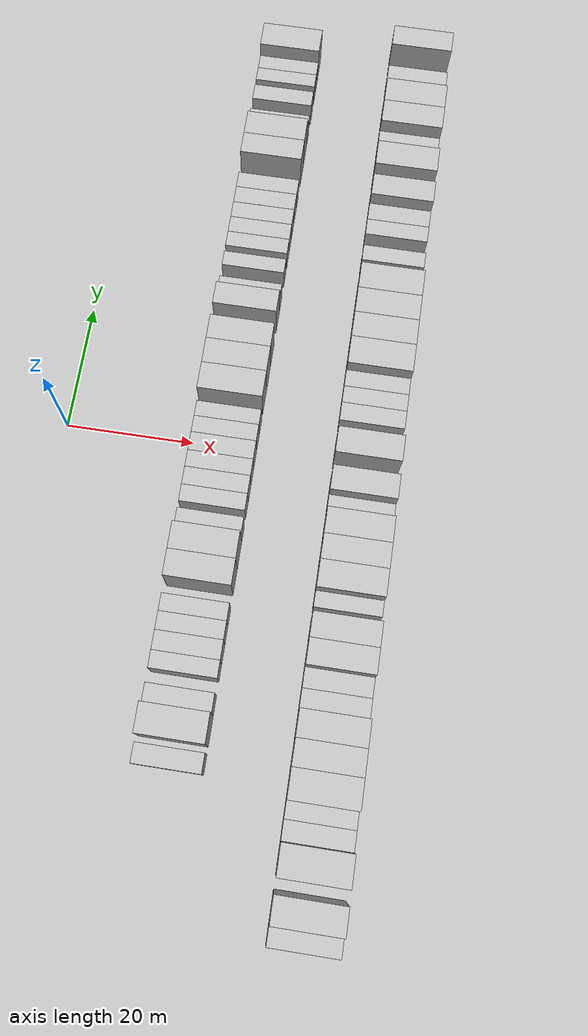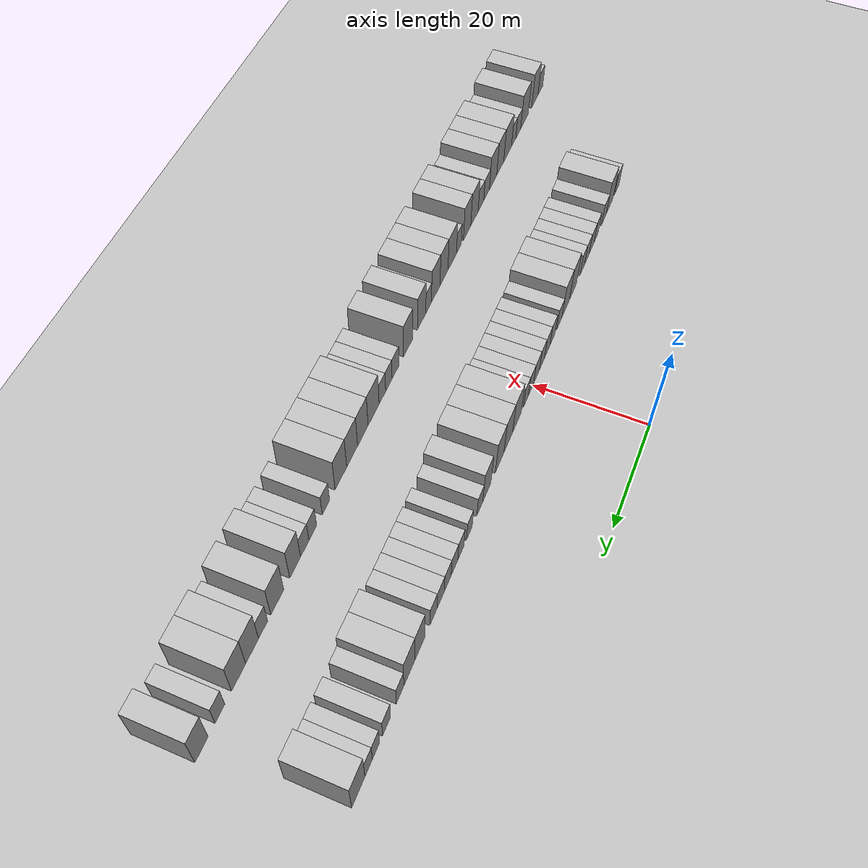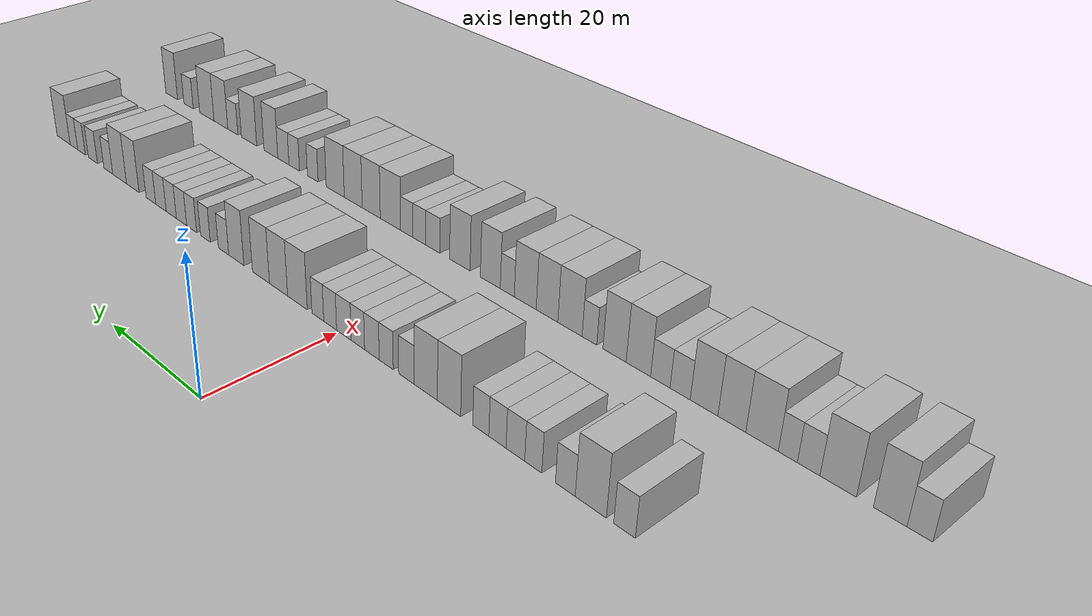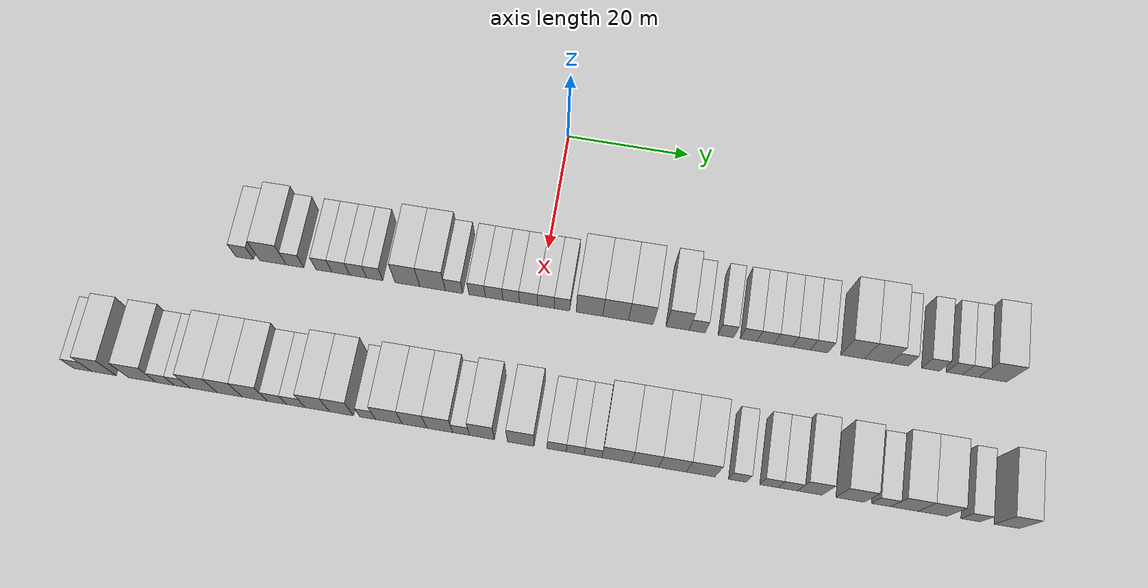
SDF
<sdf version="1.6">
 <world name="default">
  <include><name>ground_plane_1</name><uri>model://HANNAS_ground_plane</uri></include>
  <include>
   <name>ground_plane_2</name>
   <uri>model://HANNAS_ground_plane</uri>
   <pose>100 0 0  0 0 0</pose>
  </include>
  <model name="building_35">
   <static>1</static>
   <pose>25.0000 -47.2095 0 0.000000 0.000000 0.000000</pose>
   <link name="link">
    <pose>0 0 3.00 0 0 0</pose>
    <collision name="collision"><geometry><box><size>10.0000 2.8864 6.0000</size></box></geometry></collision>
    <visual name="visual">
     <cast_shadows>0</cast_shadows>
     <geometry><box><size>10.0000 2.8864 6.0000</size></box></geometry>
     <material>
      <script>
       <uri>model://HANNAS_wall/materials/scripts</uri>
       <uri>model://HANNAS_wall/materials/textures</uri>
       <name>vrc/HANNAS_wall</name>
      </script>
     </material>
    </visual>
   </link>
  </model>
  <model name="building_36">
   <static>1</static>
   <pose>25.0000 -42.6026 0 0.000000 0.000000 0.000000</pose>
   <link name="link">
    <pose>0 0 4.50 0 0 0</pose>
    <collision name="collision"><geometry><box><size>10.0000 4.3273 9.0000</size></box></geometry></collision>
    <visual name="visual">
     <cast_shadows>0</cast_shadows>
     <geometry><box><size>10.0000 4.3273 9.0000</size></box></geometry>
     <material>
      <script>
       <uri>model://HANNAS_wall/materials/scripts</uri>
       <uri>model://HANNAS_wall/materials/textures</uri>
       <name>vrc/HANNAS_wall</name>
      </script>
     </material>
    </visual>
   </link>
  </model>
  <model name="building_37">
   <static>1</static>
   <pose>25.0000 -39.0143 0 0.000000 0.000000 0.000000</pose>
   <link name="link">
    <pose>0 0 3.00 0 0 0</pose>
    <collision name="collision"><geometry><box><size>10.0000 2.8494 6.0000</size></box></geometry></collision>
    <visual name="visual">
     <cast_shadows>0</cast_shadows>
     <geometry><box><size>10.0000 2.8494 6.0000</size></box></geometry>
     <material>
      <script>
       <uri>model://HANNAS_wall/materials/scripts</uri>
       <uri>model://HANNAS_wall/materials/textures</uri>
       <name>vrc/HANNAS_wall</name>
      </script>
     </material>
    </visual>
   </link>
  </model>
  <model name="building_38">
   <static>1</static>
   <pose>25.0000 -34.3015 0 0.000000 0.000000 0.000000</pose>
   <link name="link">
    <pose>0 0 3.00 0 0 0</pose>
    <collision name="collision"><geometry><box><size>10.0000 2.5761 6.0000</size></box></geometry></collision>
    <visual name="visual">
     <cast_shadows>0</cast_shadows>
     <geometry><box><size>10.0000 2.5761 6.0000</size></box></geometry>
     <material>
      <script>
       <uri>model://HANNAS_wall/materials/scripts</uri>
       <uri>model://HANNAS_wall/materials/textures</uri>
       <name>vrc/HANNAS_wall</name>
      </script>
     </material>
    </visual>
   </link>
  </model>
  <model name="building_39">
   <static>1</static>
   <pose>25.0000 -31.5714 0 0.000000 0.000000 0.000000</pose>
   <link name="link">
    <pose>0 0 3.00 0 0 0</pose>
    <collision name="collision"><geometry><box><size>10.0000 2.8842 6.0000</size></box></geometry></collision>
    <visual name="visual">
     <cast_shadows>0</cast_shadows>
     <geometry><box><size>10.0000 2.8842 6.0000</size></box></geometry>
     <material>
      <script>
       <uri>model://HANNAS_wall/materials/scripts</uri>
       <uri>model://HANNAS_wall/materials/textures</uri>
       <name>vrc/HANNAS_wall</name>
      </script>
     </material>
    </visual>
   </link>
  </model>
  <model name="building_40">
   <static>1</static>
   <pose>25.0000 -28.7676 0 0.000000 0.000000 0.000000</pose>
   <link name="link">
    <pose>0 0 3.00 0 0 0</pose>
    <collision name="collision"><geometry><box><size>10.0000 2.7235 6.0000</size></box></geometry></collision>
    <visual name="visual">
     <cast_shadows>0</cast_shadows>
     <geometry><box><size>10.0000 2.7235 6.0000</size></box></geometry>
     <material>
      <script>
       <uri>model://HANNAS_wall/materials/scripts</uri>
       <uri>model://HANNAS_wall/materials/textures</uri>
       <name>vrc/HANNAS_wall</name>
      </script>
     </material>
    </visual>
   </link>
  </model>
  <model name="building_41">
   <static>1</static>
   <pose>25.0000 -26.1054 0 0.000000 0.000000 0.000000</pose>
   <link name="link">
    <pose>0 0 3.00 0 0 0</pose>
    <collision name="collision"><geometry><box><size>10.0000 2.6008 6.0000</size></box></geometry></collision>
    <visual name="visual">
     <cast_shadows>0</cast_shadows>
     <geometry><box><size>10.0000 2.6008 6.0000</size></box></geometry>
     <material>
      <script>
       <uri>model://HANNAS_wall/materials/scripts</uri>
       <uri>model://HANNAS_wall/materials/textures</uri>
       <name>vrc/HANNAS_wall</name>
      </script>
     </material>
    </visual>
   </link>
  </model>
  <model name="building_42">
   <static>1</static>
   <pose>25.0000 -20.8235 0 0.000000 0.000000 0.000000</pose>
   <link name="link">
    <pose>0 0 4.50 0 0 0</pose>
    <collision name="collision"><geometry><box><size>10.0000 3.9630 9.0000</size></box></geometry></collision>
    <visual name="visual">
     <cast_shadows>0</cast_shadows>
     <geometry><box><size>10.0000 3.9630 9.0000</size></box></geometry>
     <material>
      <script>
       <uri>model://HANNAS_wall/materials/scripts</uri>
       <uri>model://HANNAS_wall/materials/textures</uri>
       <name>vrc/HANNAS_wall</name>
      </script>
     </material>
    </visual>
   </link>
  </model>
  <model name="building_43">
   <static>1</static>
   <pose>25.0000 -16.7851 0 0.000000 0.000000 0.000000</pose>
   <link name="link">
    <pose>0 0 4.50 0 0 0</pose>
    <collision name="collision"><geometry><box><size>10.0000 4.1138 9.0000</size></box></geometry></collision>
    <visual name="visual">
     <cast_shadows>0</cast_shadows>
     <geometry><box><size>10.0000 4.1138 9.0000</size></box></geometry>
     <material>
      <script>
       <uri>model://HANNAS_wall/materials/scripts</uri>
       <uri>model://HANNAS_wall/materials/textures</uri>
       <name>vrc/HANNAS_wall</name>
      </script>
     </material>
    </visual>
   </link>
  </model>
  <model name="building_44">
   <static>1</static>
   <pose>25.0000 -13.3389 0 0.000000 0.000000 0.000000</pose>
   <link name="link">
    <pose>0 0 3.00 0 0 0</pose>
    <collision name="collision"><geometry><box><size>10.0000 2.7785 6.0000</size></box></geometry></collision>
    <visual name="visual">
     <cast_shadows>0</cast_shadows>
     <geometry><box><size>10.0000 2.7785 6.0000</size></box></geometry>
     <material>
      <script>
       <uri>model://HANNAS_wall/materials/scripts</uri>
       <uri>model://HANNAS_wall/materials/textures</uri>
       <name>vrc/HANNAS_wall</name>
      </script>
     </material>
    </visual>
   </link>
  </model>
  <model name="building_45">
   <static>1</static>
   <pose>25.0000 -9.6375 0 0.000000 0.000000 0.000000</pose>
   <link name="link">
    <pose>0 0 3.00 0 0 0</pose>
    <collision name="collision"><geometry><box><size>10.0000 2.6243 6.0000</size></box></geometry></collision>
    <visual name="visual">
     <cast_shadows>0</cast_shadows>
     <geometry><box><size>10.0000 2.6243 6.0000</size></box></geometry>
     <material>
      <script>
       <uri>model://HANNAS_wall/materials/scripts</uri>
       <uri>model://HANNAS_wall/materials/textures</uri>
       <name>vrc/HANNAS_wall</name>
      </script>
     </material>
    </visual>
   </link>
  </model>
  <model name="building_46">
   <static>1</static>
   <pose>25.0000 -6.9261 0 0.000000 0.000000 0.000000</pose>
   <link name="link">
    <pose>0 0 3.00 0 0 0</pose>
    <collision name="collision"><geometry><box><size>10.0000 2.7985 6.0000</size></box></geometry></collision>
    <visual name="visual">
     <cast_shadows>0</cast_shadows>
     <geometry><box><size>10.0000 2.7985 6.0000</size></box></geometry>
     <material>
      <script>
       <uri>model://HANNAS_wall/materials/scripts</uri>
       <uri>model://HANNAS_wall/materials/textures</uri>
       <name>vrc/HANNAS_wall</name>
      </script>
     </material>
    </visual>
   </link>
  </model>
  <model name="building_47">
   <static>1</static>
   <pose>25.0000 -4.2177 0 0.000000 0.000000 0.000000</pose>
   <link name="link">
    <pose>0 0 3.00 0 0 0</pose>
    <collision name="collision"><geometry><box><size>10.0000 2.6183 6.0000</size></box></geometry></collision>
    <visual name="visual">
     <cast_shadows>0</cast_shadows>
     <geometry><box><size>10.0000 2.6183 6.0000</size></box></geometry>
     <material>
      <script>
       <uri>model://HANNAS_wall/materials/scripts</uri>
       <uri>model://HANNAS_wall/materials/textures</uri>
       <name>vrc/HANNAS_wall</name>
      </script>
     </material>
    </visual>
   </link>
  </model>
  <model name="building_48">
   <static>1</static>
   <pose>25.0000 -1.4570 0 0.000000 0.000000 0.000000</pose>
   <link name="link">
    <pose>0 0 3.00 0 0 0</pose>
    <collision name="collision"><geometry><box><size>10.0000 2.9032 6.0000</size></box></geometry></collision>
    <visual name="visual">
     <cast_shadows>0</cast_shadows>
     <geometry><box><size>10.0000 2.9032 6.0000</size></box></geometry>
     <material>
      <script>
       <uri>model://HANNAS_wall/materials/scripts</uri>
       <uri>model://HANNAS_wall/materials/textures</uri>
       <name>vrc/HANNAS_wall</name>
      </script>
     </material>
    </visual>
   </link>
  </model>
  <model name="building_49">
   <static>1</static>
   <pose>25.0000 1.3108 0 0.000000 0.000000 0.000000</pose>
   <link name="link">
    <pose>0 0 3.00 0 0 0</pose>
    <collision name="collision"><geometry><box><size>10.0000 2.6324 6.0000</size></box></geometry></collision>
    <visual name="visual">
     <cast_shadows>0</cast_shadows>
     <geometry><box><size>10.0000 2.6324 6.0000</size></box></geometry>
     <material>
      <script>
       <uri>model://HANNAS_wall/materials/scripts</uri>
       <uri>model://HANNAS_wall/materials/textures</uri>
       <name>vrc/HANNAS_wall</name>
      </script>
     </material>
    </visual>
   </link>
  </model>
  <model name="building_50">
   <static>1</static>
   <pose>25.0000 3.8533 0 0.000000 0.000000 0.000000</pose>
   <link name="link">
    <pose>0 0 3.00 0 0 0</pose>
    <collision name="collision"><geometry><box><size>10.0000 2.4526 6.0000</size></box></geometry></collision>
    <visual name="visual">
     <cast_shadows>0</cast_shadows>
     <geometry><box><size>10.0000 2.4526 6.0000</size></box></geometry>
     <material>
      <script>
       <uri>model://HANNAS_wall/materials/scripts</uri>
       <uri>model://HANNAS_wall/materials/textures</uri>
       <name>vrc/HANNAS_wall</name>
      </script>
     </material>
    </visual>
   </link>
  </model>
  <model name="building_51">
   <static>1</static>
   <pose>25.0000 8.1928 0 0.000000 0.000000 0.000000</pose>
   <link name="link">
    <pose>0 0 4.50 0 0 0</pose>
    <collision name="collision"><geometry><box><size>10.0000 4.2265 9.0000</size></box></geometry></collision>
    <visual name="visual">
     <cast_shadows>0</cast_shadows>
     <geometry><box><size>10.0000 4.2265 9.0000</size></box></geometry>
     <material>
      <script>
       <uri>model://HANNAS_wall/materials/scripts</uri>
       <uri>model://HANNAS_wall/materials/textures</uri>
       <name>vrc/HANNAS_wall</name>
      </script>
     </material>
    </visual>
   </link>
  </model>
  <model name="building_52">
   <static>1</static>
   <pose>25.0000 12.3252 0 0.000000 0.000000 0.000000</pose>
   <link name="link">
    <pose>0 0 4.50 0 0 0</pose>
    <collision name="collision"><geometry><box><size>10.0000 4.0383 9.0000</size></box></geometry></collision>
    <visual name="visual">
     <cast_shadows>0</cast_shadows>
     <geometry><box><size>10.0000 4.0383 9.0000</size></box></geometry>
     <material>
      <script>
       <uri>model://HANNAS_wall/materials/scripts</uri>
       <uri>model://HANNAS_wall/materials/textures</uri>
       <name>vrc/HANNAS_wall</name>
      </script>
     </material>
    </visual>
   </link>
  </model>
  <model name="building_53">
   <static>1</static>
   <pose>25.0000 16.2974 0 0.000000 0.000000 0.000000</pose>
   <link name="link">
    <pose>0 0 4.50 0 0 0</pose>
    <collision name="collision"><geometry><box><size>10.0000 3.9061 9.0000</size></box></geometry></collision>
    <visual name="visual">
     <cast_shadows>0</cast_shadows>
     <geometry><box><size>10.0000 3.9061 9.0000</size></box></geometry>
     <material>
      <script>
       <uri>model://HANNAS_wall/materials/scripts</uri>
       <uri>model://HANNAS_wall/materials/textures</uri>
       <name>vrc/HANNAS_wall</name>
      </script>
     </material>
    </visual>
   </link>
  </model>
  <model name="building_54">
   <static>1</static>
   <pose>25.0000 22.0665 0 0.000000 0.000000 0.000000</pose>
   <link name="link">
    <pose>0 0 4.50 0 0 0</pose>
    <collision name="collision"><geometry><box><size>10.0000 3.6322 9.0000</size></box></geometry></collision>
    <visual name="visual">
     <cast_shadows>0</cast_shadows>
     <geometry><box><size>10.0000 3.6322 9.0000</size></box></geometry>
     <material>
      <script>
       <uri>model://HANNAS_wall/materials/scripts</uri>
       <uri>model://HANNAS_wall/materials/textures</uri>
       <name>vrc/HANNAS_wall</name>
      </script>
     </material>
    </visual>
   </link>
  </model>
  <model name="building_55">
   <static>1</static>
   <pose>25.0000 25.1581 0 0.000000 0.000000 0.000000</pose>
   <link name="link">
    <pose>0 0 3.00 0 0 0</pose>
    <collision name="collision"><geometry><box><size>10.0000 2.5508 6.0000</size></box></geometry></collision>
    <visual name="visual">
     <cast_shadows>0</cast_shadows>
     <geometry><box><size>10.0000 2.5508 6.0000</size></box></geometry>
     <material>
      <script>
       <uri>model://HANNAS_wall/materials/scripts</uri>
       <uri>model://HANNAS_wall/materials/textures</uri>
       <name>vrc/HANNAS_wall</name>
      </script>
     </material>
    </visual>
   </link>
  </model>
  <model name="building_56">
   <static>1</static>
   <pose>25.0000 29.6646 0 0.000000 0.000000 0.000000</pose>
   <link name="link">
    <pose>0 0 3.00 0 0 0</pose>
    <collision name="collision"><geometry><box><size>10.0000 2.4623 6.0000</size></box></geometry></collision>
    <visual name="visual">
     <cast_shadows>0</cast_shadows>
     <geometry><box><size>10.0000 2.4623 6.0000</size></box></geometry>
     <material>
      <script>
       <uri>model://HANNAS_wall/materials/scripts</uri>
       <uri>model://HANNAS_wall/materials/textures</uri>
       <name>vrc/HANNAS_wall</name>
      </script>
     </material>
    </visual>
   </link>
  </model>
  <model name="building_57">
   <static>1</static>
   <pose>25.0000 33.1906 0 0.000000 0.000000 0.000000</pose>
   <link name="link">
    <pose>0 0 3.00 0 0 0</pose>
    <collision name="collision"><geometry><box><size>10.0000 2.5897 6.0000</size></box></geometry></collision>
    <visual name="visual">
     <cast_shadows>0</cast_shadows>
     <geometry><box><size>10.0000 2.5897 6.0000</size></box></geometry>
     <material>
      <script>
       <uri>model://HANNAS_wall/materials/scripts</uri>
       <uri>model://HANNAS_wall/materials/textures</uri>
       <name>vrc/HANNAS_wall</name>
      </script>
     </material>
    </visual>
   </link>
  </model>
  <model name="building_58">
   <static>1</static>
   <pose>25.0000 35.8413 0 0.000000 0.000000 0.000000</pose>
   <link name="link">
    <pose>0 0 3.00 0 0 0</pose>
    <collision name="collision"><geometry><box><size>10.0000 2.7117 6.0000</size></box></geometry></collision>
    <visual name="visual">
     <cast_shadows>0</cast_shadows>
     <geometry><box><size>10.0000 2.7117 6.0000</size></box></geometry>
     <material>
      <script>
       <uri>model://HANNAS_wall/materials/scripts</uri>
       <uri>model://HANNAS_wall/materials/textures</uri>
       <name>vrc/HANNAS_wall</name>
      </script>
     </material>
    </visual>
   </link>
  </model>
  <model name="building_59">
   <static>1</static>
   <pose>25.0000 38.5759 0 0.000000 0.000000 0.000000</pose>
   <link name="link">
    <pose>0 0 3.00 0 0 0</pose>
    <collision name="collision"><geometry><box><size>10.0000 2.7576 6.0000</size></box></geometry></collision>
    <visual name="visual">
     <cast_shadows>0</cast_shadows>
     <geometry><box><size>10.0000 2.7576 6.0000</size></box></geometry>
     <material>
      <script>
       <uri>model://HANNAS_wall/materials/scripts</uri>
       <uri>model://HANNAS_wall/materials/textures</uri>
       <name>vrc/HANNAS_wall</name>
      </script>
     </material>
    </visual>
   </link>
  </model>
  <model name="building_60">
   <static>1</static>
   <pose>25.0000 41.3801 0 0.000000 0.000000 0.000000</pose>
   <link name="link">
    <pose>0 0 3.00 0 0 0</pose>
    <collision name="collision"><geometry><box><size>10.0000 2.8506 6.0000</size></box></geometry></collision>
    <visual name="visual">
     <cast_shadows>0</cast_shadows>
     <geometry><box><size>10.0000 2.8506 6.0000</size></box></geometry>
     <material>
      <script>
       <uri>model://HANNAS_wall/materials/scripts</uri>
       <uri>model://HANNAS_wall/materials/textures</uri>
       <name>vrc/HANNAS_wall</name>
      </script>
     </material>
    </visual>
   </link>
  </model>
  <model name="building_61">
   <static>1</static>
   <pose>25.0000 44.1624 0 0.000000 0.000000 0.000000</pose>
   <link name="link">
    <pose>0 0 3.00 0 0 0</pose>
    <collision name="collision"><geometry><box><size>10.0000 2.7140 6.0000</size></box></geometry></collision>
    <visual name="visual">
     <cast_shadows>0</cast_shadows>
     <geometry><box><size>10.0000 2.7140 6.0000</size></box></geometry>
     <material>
      <script>
       <uri>model://HANNAS_wall/materials/scripts</uri>
       <uri>model://HANNAS_wall/materials/textures</uri>
       <name>vrc/HANNAS_wall</name>
      </script>
     </material>
    </visual>
   </link>
  </model>
  <model name="building_62">
   <static>1</static>
   <pose>25.0000 49.3461 0 0.000000 0.000000 0.000000</pose>
   <link name="link">
    <pose>0 0 4.50 0 0 0</pose>
    <collision name="collision"><geometry><box><size>10.0000 3.6535 9.0000</size></box></geometry></collision>
    <visual name="visual">
     <cast_shadows>0</cast_shadows>
     <geometry><box><size>10.0000 3.6535 9.0000</size></box></geometry>
     <material>
      <script>
       <uri>model://HANNAS_wall/materials/scripts</uri>
       <uri>model://HANNAS_wall/materials/textures</uri>
       <name>vrc/HANNAS_wall</name>
      </script>
     </material>
    </visual>
   </link>
  </model>
  <model name="building_63">
   <static>1</static>
   <pose>25.0000 53.2187 0 0.000000 0.000000 0.000000</pose>
   <link name="link">
    <pose>0 0 4.50 0 0 0</pose>
    <collision name="collision"><geometry><box><size>10.0000 4.0916 9.0000</size></box></geometry></collision>
    <visual name="visual">
     <cast_shadows>0</cast_shadows>
     <geometry><box><size>10.0000 4.0916 9.0000</size></box></geometry>
     <material>
      <script>
       <uri>model://HANNAS_wall/materials/scripts</uri>
       <uri>model://HANNAS_wall/materials/textures</uri>
       <name>vrc/HANNAS_wall</name>
      </script>
     </material>
    </visual>
   </link>
  </model>
  <model name="building_64">
   <static>1</static>
   <pose>25.0000 56.6084 0 0.000000 0.000000 0.000000</pose>
   <link name="link">
    <pose>0 0 3.00 0 0 0</pose>
    <collision name="collision"><geometry><box><size>10.0000 2.6878 6.0000</size></box></geometry></collision>
    <visual name="visual">
     <cast_shadows>0</cast_shadows>
     <geometry><box><size>10.0000 2.6878 6.0000</size></box></geometry>
     <material>
      <script>
       <uri>model://HANNAS_wall/materials/scripts</uri>
       <uri>model://HANNAS_wall/materials/textures</uri>
       <name>vrc/HANNAS_wall</name>
      </script>
     </material>
    </visual>
   </link>
  </model>
  <model name="building_65">
   <static>1</static>
   <pose>25.0000 61.3530 0 0.000000 0.000000 0.000000</pose>
   <link name="link">
    <pose>0 0 3.00 0 0 0</pose>
    <collision name="collision"><geometry><box><size>10.0000 2.8014 6.0000</size></box></geometry></collision>
    <visual name="visual">
     <cast_shadows>0</cast_shadows>
     <geometry><box><size>10.0000 2.8014 6.0000</size></box></geometry>
     <material>
      <script>
       <uri>model://HANNAS_wall/materials/scripts</uri>
       <uri>model://HANNAS_wall/materials/textures</uri>
       <name>vrc/HANNAS_wall</name>
      </script>
     </material>
    </visual>
   </link>
  </model>
  <model name="building_66">
   <static>1</static>
   <pose>25.0000 64.9704 0 0.000000 0.000000 0.000000</pose>
   <link name="link">
    <pose>0 0 3.00 0 0 0</pose>
    <collision name="collision"><geometry><box><size>10.0000 2.4335 6.0000</size></box></geometry></collision>
    <visual name="visual">
     <cast_shadows>0</cast_shadows>
     <geometry><box><size>10.0000 2.4335 6.0000</size></box></geometry>
     <material>
      <script>
       <uri>model://HANNAS_wall/materials/scripts</uri>
       <uri>model://HANNAS_wall/materials/textures</uri>
       <name>vrc/HANNAS_wall</name>
      </script>
     </material>
    </visual>
   </link>
  </model>
  <model name="building_67">
   <static>1</static>
   <pose>25.0000 67.4277 0 0.000000 0.000000 0.000000</pose>
   <link name="link">
    <pose>0 0 3.00 0 0 0</pose>
    <collision name="collision"><geometry><box><size>10.0000 2.4811 6.0000</size></box></geometry></collision>
    <visual name="visual">
     <cast_shadows>0</cast_shadows>
     <geometry><box><size>10.0000 2.4811 6.0000</size></box></geometry>
     <material>
      <script>
       <uri>model://HANNAS_wall/materials/scripts</uri>
       <uri>model://HANNAS_wall/materials/textures</uri>
       <name>vrc/HANNAS_wall</name>
      </script>
     </material>
    </visual>
   </link>
  </model>
  <model name="building_68">
   <static>1</static>
   <pose>25.0000 70.8253 0 0.000000 0.000000 0.000000</pose>
   <link name="link">
    <pose>0 0 4.50 0 0 0</pose>
    <collision name="collision"><geometry><box><size>10.0000 4.3140 9.0000</size></box></geometry></collision>
    <visual name="visual">
     <cast_shadows>0</cast_shadows>
     <geometry><box><size>10.0000 4.3140 9.0000</size></box></geometry>
     <material>
      <script>
       <uri>model://HANNAS_wall/materials/scripts</uri>
       <uri>model://HANNAS_wall/materials/textures</uri>
       <name>vrc/HANNAS_wall</name>
      </script>
     </material>
    </visual>
   </link>
  </model>
  <model name="building_141">
   <static>1</static>
   <pose>47.0000 -67.1854 0 0.000000 0.000000 0.000000</pose>
   <link name="link">
    <pose>0 0 3.00 0 0 0</pose>
    <collision name="collision"><geometry><box><size>10.0000 2.8740 6.0000</size></box></geometry></collision>
    <visual name="visual">
     <cast_shadows>0</cast_shadows>
     <geometry><box><size>10.0000 2.8740 6.0000</size></box></geometry>
     <material>
      <script>
       <uri>model://HANNAS_wall/materials/scripts</uri>
       <uri>model://HANNAS_wall/materials/textures</uri>
       <name>vrc/HANNAS_wall</name>
      </script>
     </material>
    </visual>
   </link>
  </model>
  <model name="building_142">
   <static>1</static>
   <pose>47.0000 -63.8148 0 0.000000 0.000000 0.000000</pose>
   <link name="link">
    <pose>0 0 4.50 0 0 0</pose>
    <collision name="collision"><geometry><box><size>10.0000 3.8673 9.0000</size></box></geometry></collision>
    <visual name="visual">
     <cast_shadows>0</cast_shadows>
     <geometry><box><size>10.0000 3.8673 9.0000</size></box></geometry>
     <material>
      <script>
       <uri>model://HANNAS_wall/materials/scripts</uri>
       <uri>model://HANNAS_wall/materials/textures</uri>
       <name>vrc/HANNAS_wall</name>
      </script>
     </material>
    </visual>
   </link>
  </model>
  <model name="building_143">
   <static>1</static>
   <pose>47.0000 -57.6618 0 0.000000 0.000000 0.000000</pose>
   <link name="link">
    <pose>0 0 4.50 0 0 0</pose>
    <collision name="collision"><geometry><box><size>10.0000 4.4385 9.0000</size></box></geometry></collision>
    <visual name="visual">
     <cast_shadows>0</cast_shadows>
     <geometry><box><size>10.0000 4.4385 9.0000</size></box></geometry>
     <material>
      <script>
       <uri>model://HANNAS_wall/materials/scripts</uri>
       <uri>model://HANNAS_wall/materials/textures</uri>
       <name>vrc/HANNAS_wall</name>
      </script>
     </material>
    </visual>
   </link>
  </model>
  <model name="building_144">
   <static>1</static>
   <pose>47.0000 -54.0201 0 0.000000 0.000000 0.000000</pose>
   <link name="link">
    <pose>0 0 3.00 0 0 0</pose>
    <collision name="collision"><geometry><box><size>10.0000 2.8450 6.0000</size></box></geometry></collision>
    <visual name="visual">
     <cast_shadows>0</cast_shadows>
     <geometry><box><size>10.0000 2.8450 6.0000</size></box></geometry>
     <material>
      <script>
       <uri>model://HANNAS_wall/materials/scripts</uri>
       <uri>model://HANNAS_wall/materials/textures</uri>
       <name>vrc/HANNAS_wall</name>
      </script>
     </material>
    </visual>
   </link>
  </model>
  <model name="building_145">
   <static>1</static>
   <pose>47.0000 -51.3653 0 0.000000 0.000000 0.000000</pose>
   <link name="link">
    <pose>0 0 3.00 0 0 0</pose>
    <collision name="collision"><geometry><box><size>10.0000 2.4646 6.0000</size></box></geometry></collision>
    <visual name="visual">
     <cast_shadows>0</cast_shadows>
     <geometry><box><size>10.0000 2.4646 6.0000</size></box></geometry>
     <material>
      <script>
       <uri>model://HANNAS_wall/materials/scripts</uri>
       <uri>model://HANNAS_wall/materials/textures</uri>
       <name>vrc/HANNAS_wall</name>
      </script>
     </material>
    </visual>
   </link>
  </model>
  <model name="building_146">
   <static>1</static>
   <pose>47.0000 -47.9667 0 0.000000 0.000000 0.000000</pose>
   <link name="link">
    <pose>0 0 4.50 0 0 0</pose>
    <collision name="collision"><geometry><box><size>10.0000 4.3327 9.0000</size></box></geometry></collision>
    <visual name="visual">
     <cast_shadows>0</cast_shadows>
     <geometry><box><size>10.0000 4.3327 9.0000</size></box></geometry>
     <material>
      <script>
       <uri>model://HANNAS_wall/materials/scripts</uri>
       <uri>model://HANNAS_wall/materials/textures</uri>
       <name>vrc/HANNAS_wall</name>
      </script>
     </material>
    </visual>
   </link>
  </model>
  <model name="building_147">
   <static>1</static>
   <pose>47.0000 -43.8738 0 0.000000 0.000000 0.000000</pose>
   <link name="link">
    <pose>0 0 4.50 0 0 0</pose>
    <collision name="collision"><geometry><box><size>10.0000 3.8532 9.0000</size></box></geometry></collision>
    <visual name="visual">
     <cast_shadows>0</cast_shadows>
     <geometry><box><size>10.0000 3.8532 9.0000</size></box></geometry>
     <material>
      <script>
       <uri>model://HANNAS_wall/materials/scripts</uri>
       <uri>model://HANNAS_wall/materials/textures</uri>
       <name>vrc/HANNAS_wall</name>
      </script>
     </material>
    </visual>
   </link>
  </model>
  <model name="building_148">
   <static>1</static>
   <pose>47.0000 -39.9713 0 0.000000 0.000000 0.000000</pose>
   <link name="link">
    <pose>0 0 4.50 0 0 0</pose>
    <collision name="collision"><geometry><box><size>10.0000 3.9518 9.0000</size></box></geometry></collision>
    <visual name="visual">
     <cast_shadows>0</cast_shadows>
     <geometry><box><size>10.0000 3.9518 9.0000</size></box></geometry>
     <material>
      <script>
       <uri>model://HANNAS_wall/materials/scripts</uri>
       <uri>model://HANNAS_wall/materials/textures</uri>
       <name>vrc/HANNAS_wall</name>
      </script>
     </material>
    </visual>
   </link>
  </model>
  <model name="building_149">
   <static>1</static>
   <pose>47.0000 -36.5074 0 0.000000 0.000000 0.000000</pose>
   <link name="link">
    <pose>0 0 3.00 0 0 0</pose>
    <collision name="collision"><geometry><box><size>10.0000 2.9760 6.0000</size></box></geometry></collision>
    <visual name="visual">
     <cast_shadows>0</cast_shadows>
     <geometry><box><size>10.0000 2.9760 6.0000</size></box></geometry>
     <material>
      <script>
       <uri>model://HANNAS_wall/materials/scripts</uri>
       <uri>model://HANNAS_wall/materials/textures</uri>
       <name>vrc/HANNAS_wall</name>
      </script>
     </material>
    </visual>
   </link>
  </model>
  <model name="building_150">
   <static>1</static>
   <pose>47.0000 -33.5532 0 0.000000 0.000000 0.000000</pose>
   <link name="link">
    <pose>0 0 3.00 0 0 0</pose>
    <collision name="collision"><geometry><box><size>10.0000 2.9324 6.0000</size></box></geometry></collision>
    <visual name="visual">
     <cast_shadows>0</cast_shadows>
     <geometry><box><size>10.0000 2.9324 6.0000</size></box></geometry>
     <material>
      <script>
       <uri>model://HANNAS_wall/materials/scripts</uri>
       <uri>model://HANNAS_wall/materials/textures</uri>
       <name>vrc/HANNAS_wall</name>
      </script>
     </material>
    </visual>
   </link>
  </model>
  <model name="building_151">
   <static>1</static>
   <pose>47.0000 -30.1807 0 0.000000 0.000000 0.000000</pose>
   <link name="link">
    <pose>0 0 4.50 0 0 0</pose>
    <collision name="collision"><geometry><box><size>10.0000 3.8127 9.0000</size></box></geometry></collision>
    <visual name="visual">
     <cast_shadows>0</cast_shadows>
     <geometry><box><size>10.0000 3.8127 9.0000</size></box></geometry>
     <material>
      <script>
       <uri>model://HANNAS_wall/materials/scripts</uri>
       <uri>model://HANNAS_wall/materials/textures</uri>
       <name>vrc/HANNAS_wall</name>
      </script>
     </material>
    </visual>
   </link>
  </model>
  <model name="building_152">
   <static>1</static>
   <pose>47.0000 -26.4099 0 0.000000 0.000000 0.000000</pose>
   <link name="link">
    <pose>0 0 4.50 0 0 0</pose>
    <collision name="collision"><geometry><box><size>10.0000 3.7288 9.0000</size></box></geometry></collision>
    <visual name="visual">
     <cast_shadows>0</cast_shadows>
     <geometry><box><size>10.0000 3.7288 9.0000</size></box></geometry>
     <material>
      <script>
       <uri>model://HANNAS_wall/materials/scripts</uri>
       <uri>model://HANNAS_wall/materials/textures</uri>
       <name>vrc/HANNAS_wall</name>
      </script>
     </material>
    </visual>
   </link>
  </model>
  <model name="building_153">
   <static>1</static>
   <pose>47.0000 -22.3298 0 0.000000 0.000000 0.000000</pose>
   <link name="link">
    <pose>0 0 3.00 0 0 0</pose>
    <collision name="collision"><geometry><box><size>10.0000 2.4315 6.0000</size></box></geometry></collision>
    <visual name="visual">
     <cast_shadows>0</cast_shadows>
     <geometry><box><size>10.0000 2.4315 6.0000</size></box></geometry>
     <material>
      <script>
       <uri>model://HANNAS_wall/materials/scripts</uri>
       <uri>model://HANNAS_wall/materials/textures</uri>
       <name>vrc/HANNAS_wall</name>
      </script>
     </material>
    </visual>
   </link>
  </model>
  <model name="building_154">
   <static>1</static>
   <pose>47.0000 -19.0511 0 0.000000 0.000000 0.000000</pose>
   <link name="link">
    <pose>0 0 4.50 0 0 0</pose>
    <collision name="collision"><geometry><box><size>10.0000 4.1259 9.0000</size></box></geometry></collision>
    <visual name="visual">
     <cast_shadows>0</cast_shadows>
     <geometry><box><size>10.0000 4.1259 9.0000</size></box></geometry>
     <material>
      <script>
       <uri>model://HANNAS_wall/materials/scripts</uri>
       <uri>model://HANNAS_wall/materials/textures</uri>
       <name>vrc/HANNAS_wall</name>
      </script>
     </material>
    </visual>
   </link>
  </model>
  <model name="building_155">
   <static>1</static>
   <pose>47.0000 -15.0838 0 0.000000 0.000000 0.000000</pose>
   <link name="link">
    <pose>0 0 4.50 0 0 0</pose>
    <collision name="collision"><geometry><box><size>10.0000 3.8087 9.0000</size></box></geometry></collision>
    <visual name="visual">
     <cast_shadows>0</cast_shadows>
     <geometry><box><size>10.0000 3.8087 9.0000</size></box></geometry>
     <material>
      <script>
       <uri>model://HANNAS_wall/materials/scripts</uri>
       <uri>model://HANNAS_wall/materials/textures</uri>
       <name>vrc/HANNAS_wall</name>
      </script>
     </material>
    </visual>
   </link>
  </model>
  <model name="building_156">
   <static>1</static>
   <pose>47.0000 -11.1948 0 0.000000 0.000000 0.000000</pose>
   <link name="link">
    <pose>0 0 4.50 0 0 0</pose>
    <collision name="collision"><geometry><box><size>10.0000 3.9692 9.0000</size></box></geometry></collision>
    <visual name="visual">
     <cast_shadows>0</cast_shadows>
     <geometry><box><size>10.0000 3.9692 9.0000</size></box></geometry>
     <material>
      <script>
       <uri>model://HANNAS_wall/materials/scripts</uri>
       <uri>model://HANNAS_wall/materials/textures</uri>
       <name>vrc/HANNAS_wall</name>
      </script>
     </material>
    </visual>
   </link>
  </model>
  <model name="building_157">
   <static>1</static>
   <pose>47.0000 -7.9119 0 0.000000 0.000000 0.000000</pose>
   <link name="link">
    <pose>0 0 3.00 0 0 0</pose>
    <collision name="collision"><geometry><box><size>10.0000 2.5965 6.0000</size></box></geometry></collision>
    <visual name="visual">
     <cast_shadows>0</cast_shadows>
     <geometry><box><size>10.0000 2.5965 6.0000</size></box></geometry>
     <material>
      <script>
       <uri>model://HANNAS_wall/materials/scripts</uri>
       <uri>model://HANNAS_wall/materials/textures</uri>
       <name>vrc/HANNAS_wall</name>
      </script>
     </material>
    </visual>
   </link>
  </model>
  <model name="building_158">
   <static>1</static>
   <pose>47.0000 -4.7181 0 0.000000 0.000000 0.000000</pose>
   <link name="link">
    <pose>0 0 4.50 0 0 0</pose>
    <collision name="collision"><geometry><box><size>10.0000 3.7911 9.0000</size></box></geometry></collision>
    <visual name="visual">
     <cast_shadows>0</cast_shadows>
     <geometry><box><size>10.0000 3.7911 9.0000</size></box></geometry>
     <material>
      <script>
       <uri>model://HANNAS_wall/materials/scripts</uri>
       <uri>model://HANNAS_wall/materials/textures</uri>
       <name>vrc/HANNAS_wall</name>
      </script>
     </material>
    </visual>
   </link>
  </model>
  <model name="building_159">
   <static>1</static>
   <pose>47.0000 1.2127 0 0.000000 0.000000 0.000000</pose>
   <link name="link">
    <pose>0 0 4.50 0 0 0</pose>
    <collision name="collision"><geometry><box><size>10.0000 4.0705 9.0000</size></box></geometry></collision>
    <visual name="visual">
     <cast_shadows>0</cast_shadows>
     <geometry><box><size>10.0000 4.0705 9.0000</size></box></geometry>
     <material>
      <script>
       <uri>model://HANNAS_wall/materials/scripts</uri>
       <uri>model://HANNAS_wall/materials/textures</uri>
       <name>vrc/HANNAS_wall</name>
      </script>
     </material>
    </visual>
   </link>
  </model>
  <model name="building_160">
   <static>1</static>
   <pose>47.0000 6.7042 0 0.000000 0.000000 0.000000</pose>
   <link name="link">
    <pose>0 0 3.00 0 0 0</pose>
    <collision name="collision"><geometry><box><size>10.0000 2.9126 6.0000</size></box></geometry></collision>
    <visual name="visual">
     <cast_shadows>0</cast_shadows>
     <geometry><box><size>10.0000 2.9126 6.0000</size></box></geometry>
     <material>
      <script>
       <uri>model://HANNAS_wall/materials/scripts</uri>
       <uri>model://HANNAS_wall/materials/textures</uri>
       <name>vrc/HANNAS_wall</name>
      </script>
     </material>
    </visual>
   </link>
  </model>
  <model name="building_161">
   <static>1</static>
   <pose>47.0000 9.5080 0 0.000000 0.000000 0.000000</pose>
   <link name="link">
    <pose>0 0 3.00 0 0 0</pose>
    <collision name="collision"><geometry><box><size>10.0000 2.6950 6.0000</size></box></geometry></collision>
    <visual name="visual">
     <cast_shadows>0</cast_shadows>
     <geometry><box><size>10.0000 2.6950 6.0000</size></box></geometry>
     <material>
      <script>
       <uri>model://HANNAS_wall/materials/scripts</uri>
       <uri>model://HANNAS_wall/materials/textures</uri>
       <name>vrc/HANNAS_wall</name>
      </script>
     </material>
    </visual>
   </link>
  </model>
  <model name="building_162">
   <static>1</static>
   <pose>47.0000 12.1925 0 0.000000 0.000000 0.000000</pose>
   <link name="link">
    <pose>0 0 3.00 0 0 0</pose>
    <collision name="collision"><geometry><box><size>10.0000 2.6741 6.0000</size></box></geometry></collision>
    <visual name="visual">
     <cast_shadows>0</cast_shadows>
     <geometry><box><size>10.0000 2.6741 6.0000</size></box></geometry>
     <material>
      <script>
       <uri>model://HANNAS_wall/materials/scripts</uri>
       <uri>model://HANNAS_wall/materials/textures</uri>
       <name>vrc/HANNAS_wall</name>
      </script>
     </material>
    </visual>
   </link>
  </model>
  <model name="building_163">
   <static>1</static>
   <pose>47.0000 15.7667 0 0.000000 0.000000 0.000000</pose>
   <link name="link">
    <pose>0 0 4.50 0 0 0</pose>
    <collision name="collision"><geometry><box><size>10.0000 4.4743 9.0000</size></box></geometry></collision>
    <visual name="visual">
     <cast_shadows>0</cast_shadows>
     <geometry><box><size>10.0000 4.4743 9.0000</size></box></geometry>
     <material>
      <script>
       <uri>model://HANNAS_wall/materials/scripts</uri>
       <uri>model://HANNAS_wall/materials/textures</uri>
       <name>vrc/HANNAS_wall</name>
      </script>
     </material>
    </visual>
   </link>
  </model>
  <model name="building_164">
   <static>1</static>
   <pose>47.0000 20.0691 0 0.000000 0.000000 0.000000</pose>
   <link name="link">
    <pose>0 0 4.50 0 0 0</pose>
    <collision name="collision"><geometry><box><size>10.0000 4.1305 9.0000</size></box></geometry></collision>
    <visual name="visual">
     <cast_shadows>0</cast_shadows>
     <geometry><box><size>10.0000 4.1305 9.0000</size></box></geometry>
     <material>
      <script>
       <uri>model://HANNAS_wall/materials/scripts</uri>
       <uri>model://HANNAS_wall/materials/textures</uri>
       <name>vrc/HANNAS_wall</name>
      </script>
     </material>
    </visual>
   </link>
  </model>
  <model name="building_165">
   <static>1</static>
   <pose>47.0000 24.2274 0 0.000000 0.000000 0.000000</pose>
   <link name="link">
    <pose>0 0 4.50 0 0 0</pose>
    <collision name="collision"><geometry><box><size>10.0000 4.1862 9.0000</size></box></geometry></collision>
    <visual name="visual">
     <cast_shadows>0</cast_shadows>
     <geometry><box><size>10.0000 4.1862 9.0000</size></box></geometry>
     <material>
      <script>
       <uri>model://HANNAS_wall/materials/scripts</uri>
       <uri>model://HANNAS_wall/materials/textures</uri>
       <name>vrc/HANNAS_wall</name>
      </script>
     </material>
    </visual>
   </link>
  </model>
  <model name="building_166">
   <static>1</static>
   <pose>47.0000 28.4979 0 0.000000 0.000000 0.000000</pose>
   <link name="link">
    <pose>0 0 4.50 0 0 0</pose>
    <collision name="collision"><geometry><box><size>10.0000 4.3548 9.0000</size></box></geometry></collision>
    <visual name="visual">
     <cast_shadows>0</cast_shadows>
     <geometry><box><size>10.0000 4.3548 9.0000</size></box></geometry>
     <material>
      <script>
       <uri>model://HANNAS_wall/materials/scripts</uri>
       <uri>model://HANNAS_wall/materials/textures</uri>
       <name>vrc/HANNAS_wall</name>
      </script>
     </material>
    </visual>
   </link>
  </model>
  <model name="building_167">
   <static>1</static>
   <pose>47.0000 34.0151 0 0.000000 0.000000 0.000000</pose>
   <link name="link">
    <pose>0 0 3.00 0 0 0</pose>
    <collision name="collision"><geometry><box><size>10.0000 2.6796 6.0000</size></box></geometry></collision>
    <visual name="visual">
     <cast_shadows>0</cast_shadows>
     <geometry><box><size>10.0000 2.6796 6.0000</size></box></geometry>
     <material>
      <script>
       <uri>model://HANNAS_wall/materials/scripts</uri>
       <uri>model://HANNAS_wall/materials/textures</uri>
       <name>vrc/HANNAS_wall</name>
      </script>
     </material>
    </visual>
   </link>
  </model>
  <model name="building_168">
   <static>1</static>
   <pose>47.0000 38.7157 0 0.000000 0.000000 0.000000</pose>
   <link name="link">
    <pose>0 0 3.00 0 0 0</pose>
    <collision name="collision"><geometry><box><size>10.0000 2.7216 6.0000</size></box></geometry></collision>
    <visual name="visual">
     <cast_shadows>0</cast_shadows>
     <geometry><box><size>10.0000 2.7216 6.0000</size></box></geometry>
     <material>
      <script>
       <uri>model://HANNAS_wall/materials/scripts</uri>
       <uri>model://HANNAS_wall/materials/textures</uri>
       <name>vrc/HANNAS_wall</name>
      </script>
     </material>
    </visual>
   </link>
  </model>
  <model name="building_169">
   <static>1</static>
   <pose>47.0000 41.5369 0 0.000000 0.000000 0.000000</pose>
   <link name="link">
    <pose>0 0 3.00 0 0 0</pose>
    <collision name="collision"><geometry><box><size>10.0000 2.9207 6.0000</size></box></geometry></collision>
    <visual name="visual">
     <cast_shadows>0</cast_shadows>
     <geometry><box><size>10.0000 2.9207 6.0000</size></box></geometry>
     <material>
      <script>
       <uri>model://HANNAS_wall/materials/scripts</uri>
       <uri>model://HANNAS_wall/materials/textures</uri>
       <name>vrc/HANNAS_wall</name>
      </script>
     </material>
    </visual>
   </link>
  </model>
  <model name="building_170">
   <static>1</static>
   <pose>47.0000 44.8493 0 0.000000 0.000000 0.000000</pose>
   <link name="link">
    <pose>0 0 4.50 0 0 0</pose>
    <collision name="collision"><geometry><box><size>10.0000 3.7043 9.0000</size></box></geometry></collision>
    <visual name="visual">
     <cast_shadows>0</cast_shadows>
     <geometry><box><size>10.0000 3.7043 9.0000</size></box></geometry>
     <material>
      <script>
       <uri>model://HANNAS_wall/materials/scripts</uri>
       <uri>model://HANNAS_wall/materials/textures</uri>
       <name>vrc/HANNAS_wall</name>
      </script>
     </material>
    </visual>
   </link>
  </model>
  <model name="building_171">
   <static>1</static>
   <pose>47.0000 50.8310 0 0.000000 0.000000 0.000000</pose>
   <link name="link">
    <pose>0 0 4.50 0 0 0</pose>
    <collision name="collision"><geometry><box><size>10.0000 4.2589 9.0000</size></box></geometry></collision>
    <visual name="visual">
     <cast_shadows>0</cast_shadows>
     <geometry><box><size>10.0000 4.2589 9.0000</size></box></geometry>
     <material>
      <script>
       <uri>model://HANNAS_wall/materials/scripts</uri>
       <uri>model://HANNAS_wall/materials/textures</uri>
       <name>vrc/HANNAS_wall</name>
      </script>
     </material>
    </visual>
   </link>
  </model>
  <model name="building_172">
   <static>1</static>
   <pose>47.0000 55.4086 0 0.000000 0.000000 0.000000</pose>
   <link name="link">
    <pose>0 0 3.00 0 0 0</pose>
    <collision name="collision"><geometry><box><size>10.0000 2.8964 6.0000</size></box></geometry></collision>
    <visual name="visual">
     <cast_shadows>0</cast_shadows>
     <geometry><box><size>10.0000 2.8964 6.0000</size></box></geometry>
     <material>
      <script>
       <uri>model://HANNAS_wall/materials/scripts</uri>
       <uri>model://HANNAS_wall/materials/textures</uri>
       <name>vrc/HANNAS_wall</name>
      </script>
     </material>
    </visual>
   </link>
  </model>
  <model name="building_173">
   <static>1</static>
   <pose>47.0000 58.8687 0 0.000000 0.000000 0.000000</pose>
   <link name="link">
    <pose>0 0 4.50 0 0 0</pose>
    <collision name="collision"><geometry><box><size>10.0000 4.0239 9.0000</size></box></geometry></collision>
    <visual name="visual">
     <cast_shadows>0</cast_shadows>
     <geometry><box><size>10.0000 4.0239 9.0000</size></box></geometry>
     <material>
      <script>
       <uri>model://HANNAS_wall/materials/scripts</uri>
       <uri>model://HANNAS_wall/materials/textures</uri>
       <name>vrc/HANNAS_wall</name>
      </script>
     </material>
    </visual>
   </link>
  </model>
  <model name="building_174">
   <static>1</static>
   <pose>47.0000 63.0255 0 0.000000 0.000000 0.000000</pose>
   <link name="link">
    <pose>0 0 4.50 0 0 0</pose>
    <collision name="collision"><geometry><box><size>10.0000 4.2897 9.0000</size></box></geometry></collision>
    <visual name="visual">
     <cast_shadows>0</cast_shadows>
     <geometry><box><size>10.0000 4.2897 9.0000</size></box></geometry>
     <material>
      <script>
       <uri>model://HANNAS_wall/materials/scripts</uri>
       <uri>model://HANNAS_wall/materials/textures</uri>
       <name>vrc/HANNAS_wall</name>
      </script>
     </material>
    </visual>
   </link>
  </model>
  <model name="building_175">
   <static>1</static>
   <pose>47.0000 68.6028 0 0.000000 0.000000 0.000000</pose>
   <link name="link">
    <pose>0 0 3.00 0 0 0</pose>
    <collision name="collision"><geometry><box><size>10.0000 2.8648 6.0000</size></box></geometry></collision>
    <visual name="visual">
     <cast_shadows>0</cast_shadows>
     <geometry><box><size>10.0000 2.8648 6.0000</size></box></geometry>
     <material>
      <script>
       <uri>model://HANNAS_wall/materials/scripts</uri>
       <uri>model://HANNAS_wall/materials/textures</uri>
       <name>vrc/HANNAS_wall</name>
      </script>
     </material>
    </visual>
   </link>
  </model>
  <model name="building_176">
   <static>1</static>
   <pose>47.0000 73.9132 0 0.000000 0.000000 0.000000</pose>
   <link name="link">
    <pose>0 0 4.50 0 0 0</pose>
    <collision name="collision"><geometry><box><size>10.0000 3.7560 9.0000</size></box></geometry></collision>
    <visual name="visual">
     <cast_shadows>0</cast_shadows>
     <geometry><box><size>10.0000 3.7560 9.0000</size></box></geometry>
     <material>
      <script>
       <uri>model://HANNAS_wall/materials/scripts</uri>
       <uri>model://HANNAS_wall/materials/textures</uri>
       <name>vrc/HANNAS_wall</name>
      </script>
     </material>
    </visual>
   </link>
  </model>
 </world>
</sdf>
